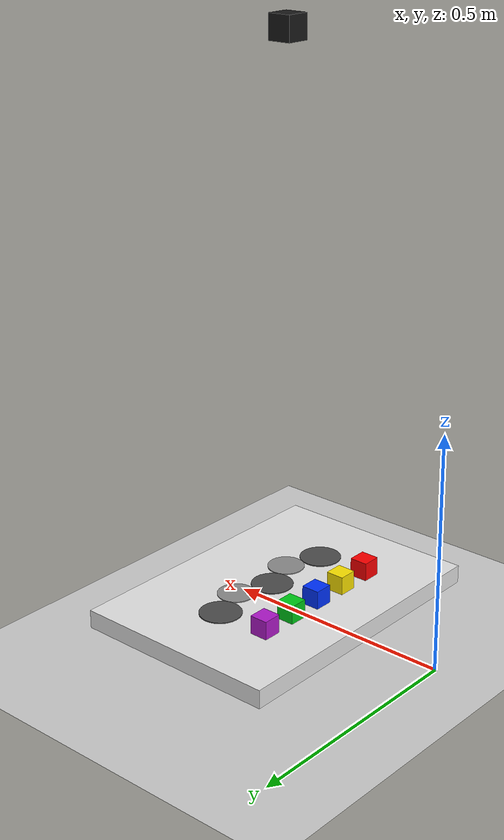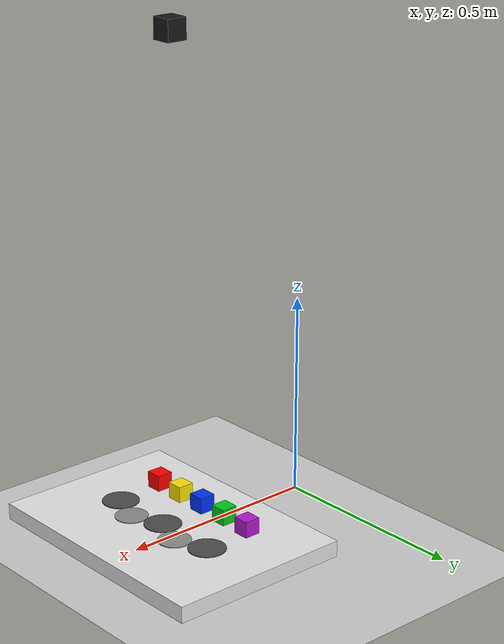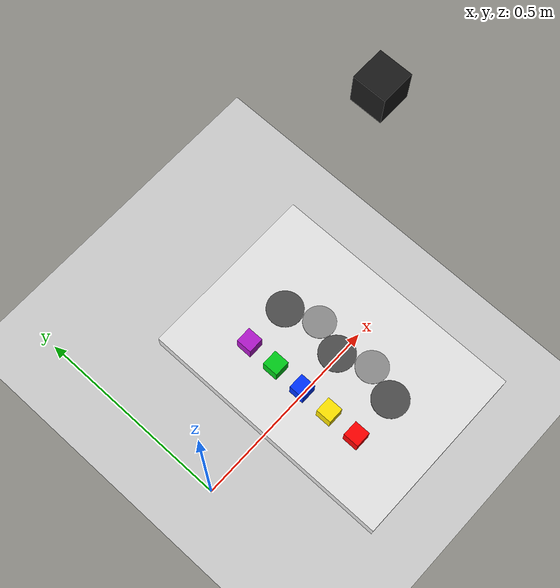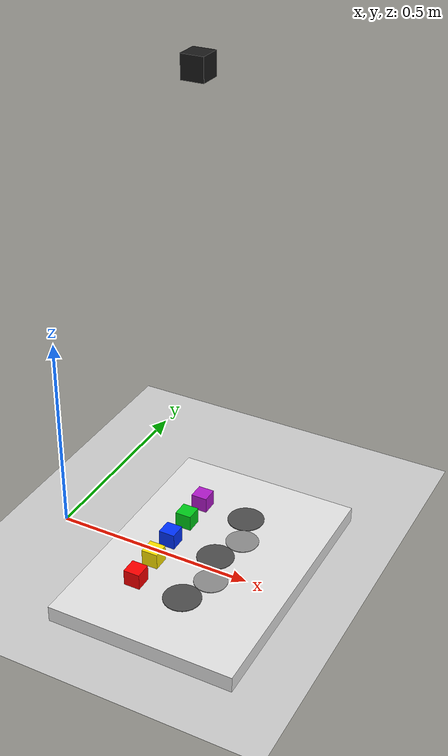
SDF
<?xml version="1.0" ?>
<sdf version="1.6">
  <world name="default">
    <include>
      <uri>model://ground_plane</uri>
    </include>
    <include>
      <uri>model://sun</uri>
    </include>

    <!-- Plugin xuất các ROS 2 service: /gazebo/set_entity_state, /gazebo/get_entity_state -->
    <plugin name="gazebo_ros_state" filename="libgazebo_ros_state.so">
      <ros>
        <namespace>/gazebo</namespace>
      </ros>
      <update_rate>50.0</update_rate>
    </plugin>

    <!-- Plugin IFRA_LinkAttacher: Tạo liên kết vật lý (fixed joint) gắp nhả vật thật chuẩn Gazebo -->
    <plugin name="gazebo_link_attacher" filename="libgazebo_link_attacher.so"/>

    <!-- BÀN THAO TÁC CAO 4cm, GẦM THÔNG THOÁNG -->
    <model name="work_table">
      <static>true</static>
      <pose>0.40 0.0 0.02 0 0 0</pose>
      <link name="link">
        <collision name="collision">
          <geometry><box><size>0.46 0.65 0.04</size></box></geometry>
        </collision>
        <visual name="visual">
          <geometry><box><size>0.46 0.65 0.04</size></box></geometry>
          <material>
            <ambient>0.9 0.9 0.9 1</ambient>
            <diffuse>0.9 0.9 0.9 1</diffuse>
          </material>
        </visual>
      </link>
    </model>

    <!-- TARGET ZONES (Màu xám trung tính, S=0 để không bị Camera Perception nhận nhầm là cube màu) -->
    <model name="visual_zone_a">
      <static>true</static>
      <pose>0.42 -0.16 0.042 0 0 0</pose>
      <link name="link">
        <visual name="visual">
          <geometry><cylinder><radius>0.045</radius><length>0.002</length></cylinder></geometry>
          <material><ambient>0.3 0.3 0.3 1</ambient><diffuse>0.3 0.3 0.3 1</diffuse></material>
        </visual>
      </link>
    </model>

    <model name="visual_zone_b">
      <static>true</static>
      <pose>0.42 0.0 0.042 0 0 0</pose>
      <link name="link">
        <visual name="visual">
          <geometry><cylinder><radius>0.045</radius><length>0.002</length></cylinder></geometry>
          <material><ambient>0.3 0.3 0.3 1</ambient><diffuse>0.3 0.3 0.3 1</diffuse></material>
        </visual>
      </link>
    </model>

    <model name="visual_zone_c">
      <static>true</static>
      <pose>0.42 0.16 0.042 0 0 0</pose>
      <link name="link">
        <visual name="visual">
          <geometry><cylinder><radius>0.045</radius><length>0.002</length></cylinder></geometry>
          <material><ambient>0.3 0.3 0.3 1</ambient><diffuse>0.3 0.3 0.3 1</diffuse></material>
        </visual>
      </link>
    </model>

    <!-- VỊ TRÍ ĐỆM TẠM (Màu xám nhạt trung tính) -->
    <model name="visual_temp_1">
      <static>true</static>
      <pose>0.45 -0.08 0.042 0 0 0</pose>
      <link name="link">
        <visual name="visual">
          <geometry><cylinder><radius>0.04</radius><length>0.002</length></cylinder></geometry>
          <material><ambient>0.55 0.55 0.55 1</ambient><diffuse>0.55 0.55 0.55 1</diffuse></material>
        </visual>
      </link>
    </model>

    <model name="visual_temp_2">
      <static>true</static>
      <pose>0.45 0.08 0.042 0 0 0</pose>
      <link name="link">
        <visual name="visual">
          <geometry><cylinder><radius>0.04</radius><length>0.002</length></cylinder></geometry>
          <material><ambient>0.55 0.55 0.55 1</ambient><diffuse>0.55 0.55 0.55 1</diffuse></material>
        </visual>
      </link>
    </model>

    <!-- 5 KHỐI CUBE - Cải thiện vật lý để gắp tốt hơn -->
    <model name="red_cube">
      <pose>0.30 -0.16 0.06 0 0 0</pose>
      <link name="link">
        <inertial>
          <mass>0.05</mass>
          <inertia><ixx>1.333e-5</ixx><ixy>0</ixy><ixz>0</ixz><iyy>1.333e-5</iyy><iyz>0</iyz><izz>1.333e-5</izz></inertia>
        </inertial>
        <collision name="collision">
          <geometry><box><size>0.04 0.04 0.04</size></box></geometry>
          <surface>
            <friction>
              <ode><mu>100.0</mu><mu2>100.0</mu2></ode>
              <torsional>
                <coefficient>50.0</coefficient>
                <use_patch_radius>true</use_patch_radius>
                <patch_radius>0.01</patch_radius>
              </torsional>
            </friction>
            <contact>
              <ode>
                <kp>50000.0</kp>
                <kd>50.0</kd>
                <max_vel>0.001</max_vel>
                <min_depth>0.002</min_depth>
              </ode>
            </contact>
          </surface>
        </collision>
        <visual name="visual">
          <geometry><box><size>0.04 0.04 0.04</size></box></geometry>
          <material><ambient>1 0 0 1</ambient><diffuse>1 0 0 1</diffuse></material>
        </visual>
      </link>
    </model>

    <model name="yellow_cube">
      <pose>0.30 -0.08 0.06 0 0 0</pose>
      <link name="link">
        <inertial>
          <mass>0.05</mass>
          <inertia><ixx>1.333e-5</ixx><ixy>0</ixy><ixz>0</ixz><iyy>1.333e-5</iyy><iyz>0</iyz><izz>1.333e-5</izz></inertia>
        </inertial>
        <collision name="collision">
          <geometry><box><size>0.04 0.04 0.04</size></box></geometry>
          <surface>
            <friction>
              <ode><mu>100.0</mu><mu2>100.0</mu2></ode>
              <torsional>
                <coefficient>50.0</coefficient>
                <use_patch_radius>true</use_patch_radius>
                <patch_radius>0.01</patch_radius>
              </torsional>
            </friction>
            <contact>
              <ode>
                <kp>50000.0</kp>
                <kd>50.0</kd>
                <max_vel>0.001</max_vel>
                <min_depth>0.002</min_depth>
              </ode>
            </contact>
          </surface>
        </collision>
        <visual name="visual">
          <geometry><box><size>0.04 0.04 0.04</size></box></geometry>
          <material><ambient>1 0.9 0 1</ambient><diffuse>1 0.9 0 1</diffuse></material>
        </visual>
      </link>
    </model>

    <model name="blue_cube">
      <pose>0.30 0.0 0.06 0 0 0</pose>
      <link name="link">
        <inertial>
          <mass>0.05</mass>
          <inertia><ixx>1.333e-5</ixx><ixy>0</ixy><ixz>0</ixz><iyy>1.333e-5</iyy><iyz>0</iyz><izz>1.333e-5</izz></inertia>
        </inertial>
        <collision name="collision">
          <geometry><box><size>0.04 0.04 0.04</size></box></geometry>
          <surface>
            <friction>
              <ode><mu>100.0</mu><mu2>100.0</mu2></ode>
              <torsional>
                <coefficient>50.0</coefficient>
                <use_patch_radius>true</use_patch_radius>
                <patch_radius>0.01</patch_radius>
              </torsional>
            </friction>
            <contact>
              <ode>
                <kp>50000.0</kp>
                <kd>50.0</kd>
                <max_vel>0.001</max_vel>
                <min_depth>0.002</min_depth>
              </ode>
            </contact>
          </surface>
        </collision>
        <visual name="visual">
          <geometry><box><size>0.04 0.04 0.04</size></box></geometry>
          <material><ambient>0 0.2 1 1</ambient><diffuse>0 0.2 1 1</diffuse></material>
        </visual>
      </link>
    </model>

    <model name="green_cube">
      <pose>0.30 0.08 0.06 0 0 0</pose>
      <link name="link">
        <inertial>
          <mass>0.05</mass>
          <inertia><ixx>1.333e-5</ixx><ixy>0</ixy><ixz>0</ixz><iyy>1.333e-5</iyy><iyz>0</iyz><izz>1.333e-5</izz></inertia>
        </inertial>
        <collision name="collision">
          <geometry><box><size>0.04 0.04 0.04</size></box></geometry>
          <surface>
            <friction>
              <ode><mu>100.0</mu><mu2>100.0</mu2></ode>
              <torsional>
                <coefficient>50.0</coefficient>
                <use_patch_radius>true</use_patch_radius>
                <patch_radius>0.01</patch_radius>
              </torsional>
            </friction>
            <contact>
              <ode>
                <kp>50000.0</kp>
                <kd>50.0</kd>
                <max_vel>0.001</max_vel>
                <min_depth>0.002</min_depth>
              </ode>
            </contact>
          </surface>
        </collision>
        <visual name="visual">
          <geometry><box><size>0.04 0.04 0.04</size></box></geometry>
          <material><ambient>0 0.8 0.1 1</ambient><diffuse>0 0.8 0.1 1</diffuse></material>
        </visual>
      </link>
    </model>

    <model name="purple_cube">
      <pose>0.30 0.16 0.06 0 0 0</pose>
      <link name="link">
        <inertial>
          <mass>0.05</mass>
          <inertia><ixx>1.333e-5</ixx><ixy>0</ixy><ixz>0</ixz><iyy>1.333e-5</iyy><iyz>0</iyz><izz>1.333e-5</izz></inertia>
        </inertial>
        <collision name="collision">
          <geometry><box><size>0.04 0.04 0.04</size></box></geometry>
          <surface>
            <friction>
              <ode><mu>100.0</mu><mu2>100.0</mu2></ode>
              <torsional>
                <coefficient>50.0</coefficient>
                <use_patch_radius>true</use_patch_radius>
                <patch_radius>0.01</patch_radius>
              </torsional>
            </friction>
            <contact>
              <ode>
                <kp>50000.0</kp>
                <kd>50.0</kd>
                <max_vel>0.001</max_vel>
                <min_depth>0.002</min_depth>
              </ode>
            </contact>
          </surface>
        </collision>
        <visual name="visual">
          <geometry><box><size>0.04 0.04 0.04</size></box></geometry>
          <material><ambient>0.7 0.1 0.8 1</ambient><diffuse>0.7 0.1 0.8 1</diffuse></material>
        </visual>
      </link>
    </model>

    <!-- OVERHEAD CAMERA -->
    <model name="overhead_camera">
      <static>true</static>
      <pose>0.38 0.0 1.20 0 1.5708 0</pose>
      <link name="camera_link">
        <visual name="visual">
          <geometry><box><size>0.05 0.05 0.05</size></box></geometry>
          <material><ambient>0.1 0.1 0.1 1</ambient></material>
        </visual>
        <sensor name="camera" type="camera">
          <always_on>true</always_on>
          <update_rate>30.0</update_rate>
          <camera>
            <horizontal_fov>1.15</horizontal_fov>
            <image><width>640</width><height>480</height><format>R8G8B8</format></image>
            <clip><near>0.1</near><far>10.0</far></clip>
          </camera>
          <plugin name="camera_controller" filename="libgazebo_ros_camera.so">
            <ros>
              <namespace>/</namespace>
              <remapping>image_raw:=camera/image_raw</remapping>
              <remapping>camera_info:=camera/camera_info</remapping>
            </ros>
            <frame_name>overhead_camera_frame</frame_name>
          </plugin>
        </sensor>
      </link>
    </model>

  </world>
</sdf>
